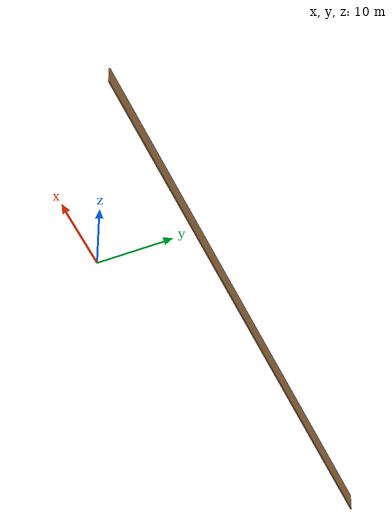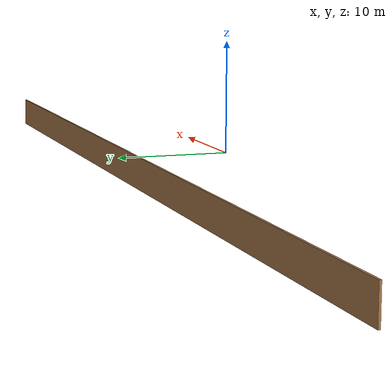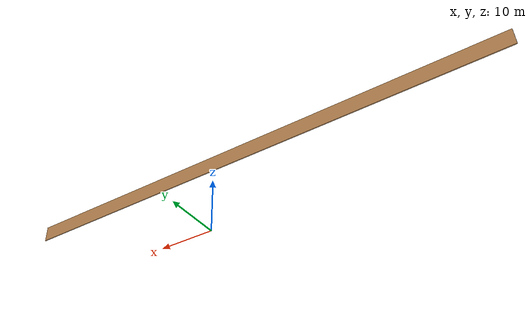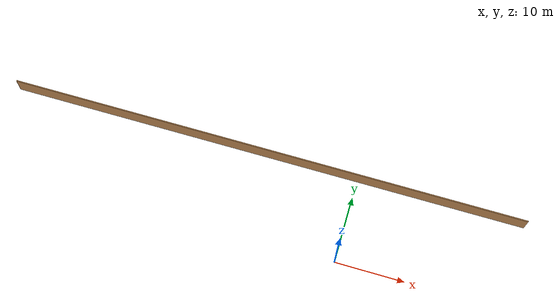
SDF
<?xml version='1.0'?>
<sdf version='1.7'>
  <model name='wood_wall'>
    <pose>-14.217 6.41947 0 0 -0 0</pose>
    <link name='Wall_13'>
      <collision name='Wall_13_Collision'>
        <geometry>
          <box>
            <size>77.25 0.15 2.5</size>
          </box>
        </geometry>
        <pose>0 0 1.25 0 -0 0</pose>
      </collision>
      <visual name='Wall_13_Visual'>
        <pose>0 0 1.25 0 -0 0</pose>
        <geometry>
          <box>
            <size>77.25 0.15 2.5</size>
          </box>
        </geometry>
        <material>
          <script>
            <uri>file://media/materials/scripts/gazebo.material</uri>
            <name>Gazebo/Wood</name>
          </script>
          <ambient>1 1 1 1</ambient>
        </material>
        <meta>
          <layer>0</layer>
        </meta>
      </visual>
      <pose>-1e-06 6.34447 0 0 -0 0</pose>
    </link>
    <static>1</static>
  </model>
</sdf>
